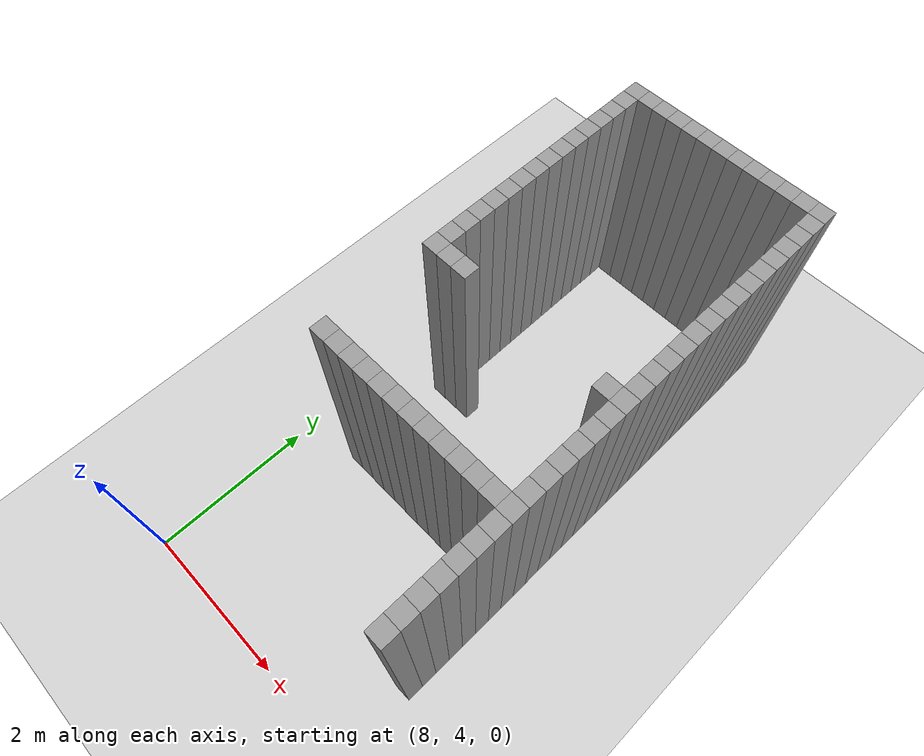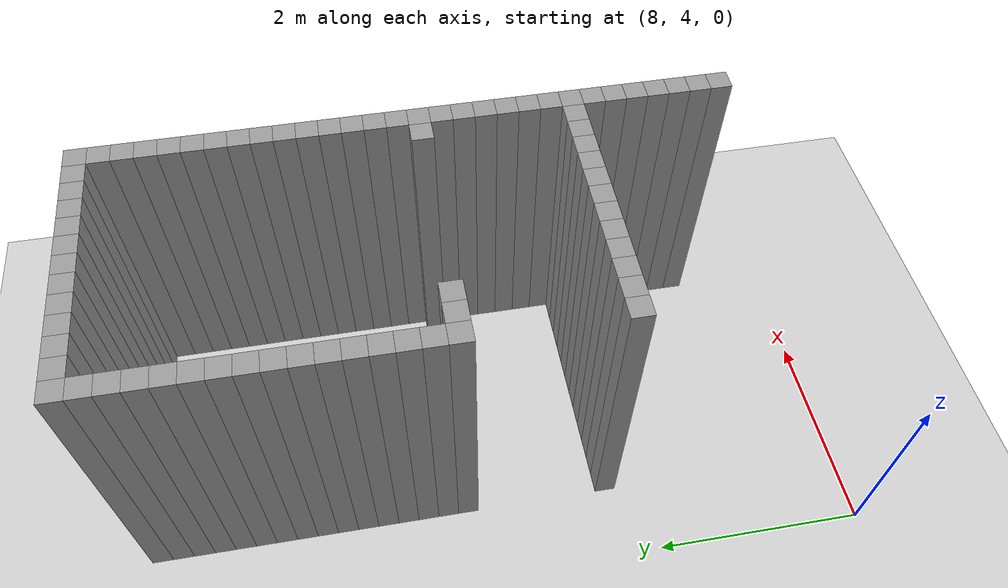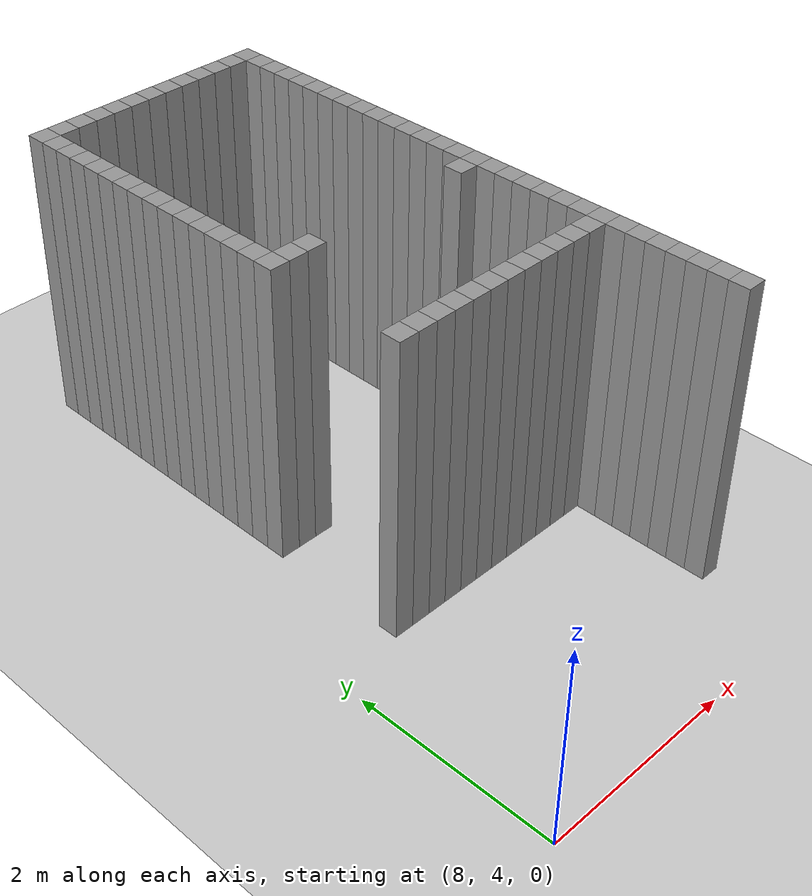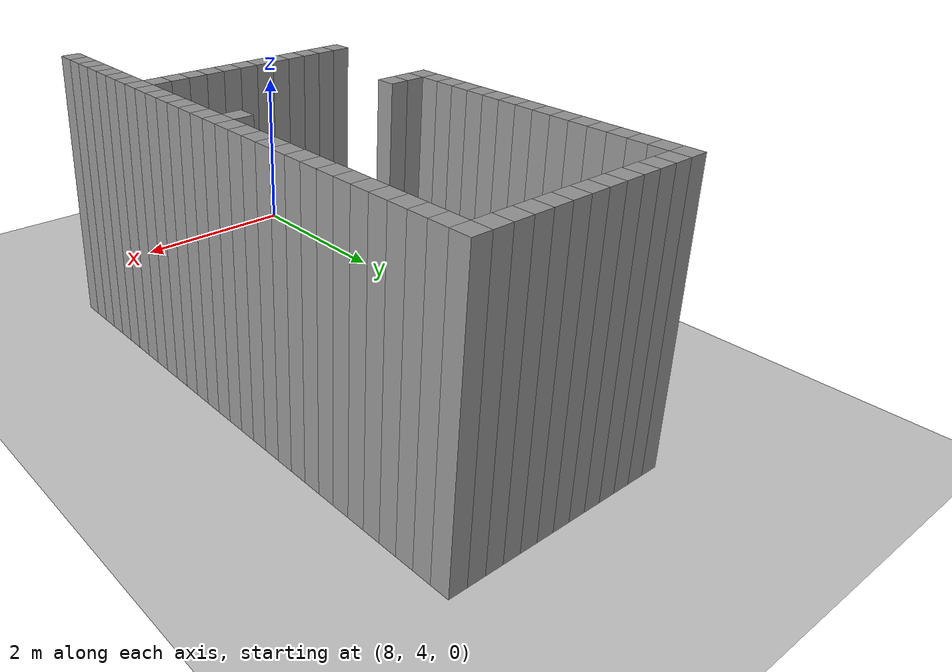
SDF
<sdf version="1.7">
 <world name="default">
  <model name="ground_plane">
   <static>1</static>
   <link name="link">
    <collision name="collision">
     <geometry><plane><normal>0 0 1</normal><size>100 100</size></plane></geometry>
     <surface>
      <contact><collide_bitmask>65535</collide_bitmask></contact>
      <friction><ode><mu>100</mu><mu2>50</mu2></ode></friction>
     </surface>
    </collision>
    <visual name="visual">
     <cast_shadows>0</cast_shadows>
     <geometry><plane><normal>0 0 1</normal><size>100 100</size></plane></geometry>
     <material>
      <script><uri>file://media/materials/scripts/gazebo.material</uri><name>Gazebo/Grey</name></script>
     </material>
    </visual>
   </link>
  </model>
  <model name="image1">
   <pose>-1 -1 0 0 -0 0</pose>
   <link name="Wall_373">
    <collision name="Wall_373_Collision">
     <geometry><box><size>0.2 0.2 3</size></box></geometry>
     <pose>0 0 1.5 0 -0 0</pose>
    </collision>
    <visual name="Wall_373_Visual">
     <pose>0 0 1.5 0 -0 0</pose>
     <geometry><box><size>0.2 0.2 3</size></box></geometry>
     <material>
      <script><uri>file://media/materials/scripts/gazebo.material</uri><name>Gazebo/Grey</name></script>
      <ambient>1 1 1 1</ambient>
     </material>
     <meta><layer>0</layer></meta>
    </visual>
    <pose>9.8 7.4 0 0 -0 0</pose>
   </link>
   <link name="Wall_374">
    <collision name="Wall_374_Collision">
     <geometry><box><size>0.2 0.2 3</size></box></geometry>
     <pose>0 0 1.5 0 -0 0</pose>
    </collision>
    <visual name="Wall_374_Visual">
     <pose>0 0 1.5 0 -0 0</pose>
     <geometry><box><size>0.2 0.2 3</size></box></geometry>
     <material>
      <script><uri>file://media/materials/scripts/gazebo.material</uri><name>Gazebo/Grey</name></script>
      <ambient>1 1 1 1</ambient>
     </material>
     <meta><layer>0</layer></meta>
    </visual>
    <pose>9.8 8.8 0 0 -0 0</pose>
   </link>
   <link name="Wall_375">
    <collision name="Wall_375_Collision">
     <geometry><box><size>0.2 0.2 3</size></box></geometry>
     <pose>0 0 1.5 0 -0 0</pose>
    </collision>
    <visual name="Wall_375_Visual">
     <pose>0 0 1.5 0 -0 0</pose>
     <geometry><box><size>0.2 0.2 3</size></box></geometry>
     <material>
      <script><uri>file://media/materials/scripts/gazebo.material</uri><name>Gazebo/Grey</name></script>
      <ambient>1 1 1 1</ambient>
     </material>
     <meta><layer>0</layer></meta>
    </visual>
    <pose>9.8 9.0 0 0 -0 0</pose>
   </link>
   <link name="Wall_376">
    <collision name="Wall_376_Collision">
     <geometry><box><size>0.2 0.2 3</size></box></geometry>
     <pose>0 0 1.5 0 -0 0</pose>
    </collision>
    <visual name="Wall_376_Visual">
     <pose>0 0 1.5 0 -0 0</pose>
     <geometry><box><size>0.2 0.2 3</size></box></geometry>
     <material>
      <script><uri>file://media/materials/scripts/gazebo.material</uri><name>Gazebo/Grey</name></script>
      <ambient>1 1 1 1</ambient>
     </material>
     <meta><layer>0</layer></meta>
    </visual>
    <pose>9.8 9.200000000000001 0 0 -0 0</pose>
   </link>
   <link name="Wall_377">
    <collision name="Wall_377_Collision">
     <geometry><box><size>0.2 0.2 3</size></box></geometry>
     <pose>0 0 1.5 0 -0 0</pose>
    </collision>
    <visual name="Wall_377_Visual">
     <pose>0 0 1.5 0 -0 0</pose>
     <geometry><box><size>0.2 0.2 3</size></box></geometry>
     <material>
      <script><uri>file://media/materials/scripts/gazebo.material</uri><name>Gazebo/Grey</name></script>
      <ambient>1 1 1 1</ambient>
     </material>
     <meta><layer>0</layer></meta>
    </visual>
    <pose>9.8 9.4 0 0 -0 0</pose>
   </link>
   <link name="Wall_378">
    <collision name="Wall_378_Collision">
     <geometry><box><size>0.2 0.2 3</size></box></geometry>
     <pose>0 0 1.5 0 -0 0</pose>
    </collision>
    <visual name="Wall_378_Visual">
     <pose>0 0 1.5 0 -0 0</pose>
     <geometry><box><size>0.2 0.2 3</size></box></geometry>
     <material>
      <script><uri>file://media/materials/scripts/gazebo.material</uri><name>Gazebo/Grey</name></script>
      <ambient>1 1 1 1</ambient>
     </material>
     <meta><layer>0</layer></meta>
    </visual>
    <pose>9.8 9.600000000000001 0 0 -0 0</pose>
   </link>
   <link name="Wall_379">
    <collision name="Wall_379_Collision">
     <geometry><box><size>0.2 0.2 3</size></box></geometry>
     <pose>0 0 1.5 0 -0 0</pose>
    </collision>
    <visual name="Wall_379_Visual">
     <pose>0 0 1.5 0 -0 0</pose>
     <geometry><box><size>0.2 0.2 3</size></box></geometry>
     <material>
      <script><uri>file://media/materials/scripts/gazebo.material</uri><name>Gazebo/Grey</name></script>
      <ambient>1 1 1 1</ambient>
     </material>
     <meta><layer>0</layer></meta>
    </visual>
    <pose>9.8 9.8 0 0 -0 0</pose>
   </link>
   <link name="Wall_380">
    <collision name="Wall_380_Collision">
     <geometry><box><size>0.2 0.2 3</size></box></geometry>
     <pose>0 0 1.5 0 -0 0</pose>
    </collision>
    <visual name="Wall_380_Visual">
     <pose>0 0 1.5 0 -0 0</pose>
     <geometry><box><size>0.2 0.2 3</size></box></geometry>
     <material>
      <script><uri>file://media/materials/scripts/gazebo.material</uri><name>Gazebo/Grey</name></script>
      <ambient>1 1 1 1</ambient>
     </material>
     <meta><layer>0</layer></meta>
    </visual>
    <pose>9.8 10.0 0 0 -0 0</pose>
   </link>
   <link name="Wall_381">
    <collision name="Wall_381_Collision">
     <geometry><box><size>0.2 0.2 3</size></box></geometry>
     <pose>0 0 1.5 0 -0 0</pose>
    </collision>
    <visual name="Wall_381_Visual">
     <pose>0 0 1.5 0 -0 0</pose>
     <geometry><box><size>0.2 0.2 3</size></box></geometry>
     <material>
      <script><uri>file://media/materials/scripts/gazebo.material</uri><name>Gazebo/Grey</name></script>
      <ambient>1 1 1 1</ambient>
     </material>
     <meta><layer>0</layer></meta>
    </visual>
    <pose>9.8 10.200000000000001 0 0 -0 0</pose>
   </link>
   <link name="Wall_382">
    <collision name="Wall_382_Collision">
     <geometry><box><size>0.2 0.2 3</size></box></geometry>
     <pose>0 0 1.5 0 -0 0</pose>
    </collision>
    <visual name="Wall_382_Visual">
     <pose>0 0 1.5 0 -0 0</pose>
     <geometry><box><size>0.2 0.2 3</size></box></geometry>
     <material>
      <script><uri>file://media/materials/scripts/gazebo.material</uri><name>Gazebo/Grey</name></script>
      <ambient>1 1 1 1</ambient>
     </material>
     <meta><layer>0</layer></meta>
    </visual>
    <pose>9.8 10.4 0 0 -0 0</pose>
   </link>
   <link name="Wall_383">
    <collision name="Wall_383_Collision">
     <geometry><box><size>0.2 0.2 3</size></box></geometry>
     <pose>0 0 1.5 0 -0 0</pose>
    </collision>
    <visual name="Wall_383_Visual">
     <pose>0 0 1.5 0 -0 0</pose>
     <geometry><box><size>0.2 0.2 3</size></box></geometry>
     <material>
      <script><uri>file://media/materials/scripts/gazebo.material</uri><name>Gazebo/Grey</name></script>
      <ambient>1 1 1 1</ambient>
     </material>
     <meta><layer>0</layer></meta>
    </visual>
    <pose>9.8 10.600000000000001 0 0 -0 0</pose>
   </link>
   <link name="Wall_384">
    <collision name="Wall_384_Collision">
     <geometry><box><size>0.2 0.2 3</size></box></geometry>
     <pose>0 0 1.5 0 -0 0</pose>
    </collision>
    <visual name="Wall_384_Visual">
     <pose>0 0 1.5 0 -0 0</pose>
     <geometry><box><size>0.2 0.2 3</size></box></geometry>
     <material>
      <script><uri>file://media/materials/scripts/gazebo.material</uri><name>Gazebo/Grey</name></script>
      <ambient>1 1 1 1</ambient>
     </material>
     <meta><layer>0</layer></meta>
    </visual>
    <pose>9.8 10.8 0 0 -0 0</pose>
   </link>
   <link name="Wall_385">
    <collision name="Wall_385_Collision">
     <geometry><box><size>0.2 0.2 3</size></box></geometry>
     <pose>0 0 1.5 0 -0 0</pose>
    </collision>
    <visual name="Wall_385_Visual">
     <pose>0 0 1.5 0 -0 0</pose>
     <geometry><box><size>0.2 0.2 3</size></box></geometry>
     <material>
      <script><uri>file://media/materials/scripts/gazebo.material</uri><name>Gazebo/Grey</name></script>
      <ambient>1 1 1 1</ambient>
     </material>
     <meta><layer>0</layer></meta>
    </visual>
    <pose>9.8 11.0 0 0 -0 0</pose>
   </link>
   <link name="Wall_386">
    <collision name="Wall_386_Collision">
     <geometry><box><size>0.2 0.2 3</size></box></geometry>
     <pose>0 0 1.5 0 -0 0</pose>
    </collision>
    <visual name="Wall_386_Visual">
     <pose>0 0 1.5 0 -0 0</pose>
     <geometry><box><size>0.2 0.2 3</size></box></geometry>
     <material>
      <script><uri>file://media/materials/scripts/gazebo.material</uri><name>Gazebo/Grey</name></script>
      <ambient>1 1 1 1</ambient>
     </material>
     <meta><layer>0</layer></meta>
    </visual>
    <pose>9.8 11.200000000000001 0 0 -0 0</pose>
   </link>
   <link name="Wall_387">
    <collision name="Wall_387_Collision">
     <geometry><box><size>0.2 0.2 3</size></box></geometry>
     <pose>0 0 1.5 0 -0 0</pose>
    </collision>
    <visual name="Wall_387_Visual">
     <pose>0 0 1.5 0 -0 0</pose>
     <geometry><box><size>0.2 0.2 3</size></box></geometry>
     <material>
      <script><uri>file://media/materials/scripts/gazebo.material</uri><name>Gazebo/Grey</name></script>
      <ambient>1 1 1 1</ambient>
     </material>
     <meta><layer>0</layer></meta>
    </visual>
    <pose>9.8 11.4 0 0 -0 0</pose>
   </link>
   <link name="Wall_388">
    <collision name="Wall_388_Collision">
     <geometry><box><size>0.2 0.2 3</size></box></geometry>
     <pose>0 0 1.5 0 -0 0</pose>
    </collision>
    <visual name="Wall_388_Visual">
     <pose>0 0 1.5 0 -0 0</pose>
     <geometry><box><size>0.2 0.2 3</size></box></geometry>
     <material>
      <script><uri>file://media/materials/scripts/gazebo.material</uri><name>Gazebo/Grey</name></script>
      <ambient>1 1 1 1</ambient>
     </material>
     <meta><layer>0</layer></meta>
    </visual>
    <pose>9.8 11.600000000000001 0 0 -0 0</pose>
   </link>
   <link name="Wall_389">
    <collision name="Wall_389_Collision">
     <geometry><box><size>0.2 0.2 3</size></box></geometry>
     <pose>0 0 1.5 0 -0 0</pose>
    </collision>
    <visual name="Wall_389_Visual">
     <pose>0 0 1.5 0 -0 0</pose>
     <geometry><box><size>0.2 0.2 3</size></box></geometry>
     <material>
      <script><uri>file://media/materials/scripts/gazebo.material</uri><name>Gazebo/Grey</name></script>
      <ambient>1 1 1 1</ambient>
     </material>
     <meta><layer>0</layer></meta>
    </visual>
    <pose>9.8 11.8 0 0 -0 0</pose>
   </link>
   <link name="Wall_393">
    <collision name="Wall_393_Collision">
     <geometry><box><size>0.2 0.2 3</size></box></geometry>
     <pose>0 0 1.5 0 -0 0</pose>
    </collision>
    <visual name="Wall_393_Visual">
     <pose>0 0 1.5 0 -0 0</pose>
     <geometry><box><size>0.2 0.2 3</size></box></geometry>
     <material>
      <script><uri>file://media/materials/scripts/gazebo.material</uri><name>Gazebo/Grey</name></script>
      <ambient>1 1 1 1</ambient>
     </material>
     <meta><layer>0</layer></meta>
    </visual>
    <pose>10.0 7.4 0 0 -0 0</pose>
   </link>
   <link name="Wall_394">
    <collision name="Wall_394_Collision">
     <geometry><box><size>0.2 0.2 3</size></box></geometry>
     <pose>0 0 1.5 0 -0 0</pose>
    </collision>
    <visual name="Wall_394_Visual">
     <pose>0 0 1.5 0 -0 0</pose>
     <geometry><box><size>0.2 0.2 3</size></box></geometry>
     <material>
      <script><uri>file://media/materials/scripts/gazebo.material</uri><name>Gazebo/Grey</name></script>
      <ambient>1 1 1 1</ambient>
     </material>
     <meta><layer>0</layer></meta>
    </visual>
    <pose>10.0 8.8 0 0 -0 0</pose>
   </link>
   <link name="Wall_395">
    <collision name="Wall_395_Collision">
     <geometry><box><size>0.2 0.2 3</size></box></geometry>
     <pose>0 0 1.5 0 -0 0</pose>
    </collision>
    <visual name="Wall_395_Visual">
     <pose>0 0 1.5 0 -0 0</pose>
     <geometry><box><size>0.2 0.2 3</size></box></geometry>
     <material>
      <script><uri>file://media/materials/scripts/gazebo.material</uri><name>Gazebo/Grey</name></script>
      <ambient>1 1 1 1</ambient>
     </material>
     <meta><layer>0</layer></meta>
    </visual>
    <pose>10.0 11.8 0 0 -0 0</pose>
   </link>
   <link name="Wall_399">
    <collision name="Wall_399_Collision">
     <geometry><box><size>0.2 0.2 3</size></box></geometry>
     <pose>0 0 1.5 0 -0 0</pose>
    </collision>
    <visual name="Wall_399_Visual">
     <pose>0 0 1.5 0 -0 0</pose>
     <geometry><box><size>0.2 0.2 3</size></box></geometry>
     <material>
      <script><uri>file://media/materials/scripts/gazebo.material</uri><name>Gazebo/Grey</name></script>
      <ambient>1 1 1 1</ambient>
     </material>
     <meta><layer>0</layer></meta>
    </visual>
    <pose>10.200000000000001 7.4 0 0 -0 0</pose>
   </link>
   <link name="Wall_400">
    <collision name="Wall_400_Collision">
     <geometry><box><size>0.2 0.2 3</size></box></geometry>
     <pose>0 0 1.5 0 -0 0</pose>
    </collision>
    <visual name="Wall_400_Visual">
     <pose>0 0 1.5 0 -0 0</pose>
     <geometry><box><size>0.2 0.2 3</size></box></geometry>
     <material>
      <script><uri>file://media/materials/scripts/gazebo.material</uri><name>Gazebo/Grey</name></script>
      <ambient>1 1 1 1</ambient>
     </material>
     <meta><layer>0</layer></meta>
    </visual>
    <pose>10.200000000000001 8.8 0 0 -0 0</pose>
   </link>
   <link name="Wall_401">
    <collision name="Wall_401_Collision">
     <geometry><box><size>0.2 0.2 3</size></box></geometry>
     <pose>0 0 1.5 0 -0 0</pose>
    </collision>
    <visual name="Wall_401_Visual">
     <pose>0 0 1.5 0 -0 0</pose>
     <geometry><box><size>0.2 0.2 3</size></box></geometry>
     <material>
      <script><uri>file://media/materials/scripts/gazebo.material</uri><name>Gazebo/Grey</name></script>
      <ambient>1 1 1 1</ambient>
     </material>
     <meta><layer>0</layer></meta>
    </visual>
    <pose>10.200000000000001 11.8 0 0 -0 0</pose>
   </link>
   <link name="Wall_405">
    <collision name="Wall_405_Collision">
     <geometry><box><size>0.2 0.2 3</size></box></geometry>
     <pose>0 0 1.5 0 -0 0</pose>
    </collision>
    <visual name="Wall_405_Visual">
     <pose>0 0 1.5 0 -0 0</pose>
     <geometry><box><size>0.2 0.2 3</size></box></geometry>
     <material>
      <script><uri>file://media/materials/scripts/gazebo.material</uri><name>Gazebo/Grey</name></script>
      <ambient>1 1 1 1</ambient>
     </material>
     <meta><layer>0</layer></meta>
    </visual>
    <pose>10.4 7.4 0 0 -0 0</pose>
   </link>
   <link name="Wall_406">
    <collision name="Wall_406_Collision">
     <geometry><box><size>0.2 0.2 3</size></box></geometry>
     <pose>0 0 1.5 0 -0 0</pose>
    </collision>
    <visual name="Wall_406_Visual">
     <pose>0 0 1.5 0 -0 0</pose>
     <geometry><box><size>0.2 0.2 3</size></box></geometry>
     <material>
      <script><uri>file://media/materials/scripts/gazebo.material</uri><name>Gazebo/Grey</name></script>
      <ambient>1 1 1 1</ambient>
     </material>
     <meta><layer>0</layer></meta>
    </visual>
    <pose>10.4 11.8 0 0 -0 0</pose>
   </link>
   <link name="Wall_410">
    <collision name="Wall_410_Collision">
     <geometry><box><size>0.2 0.2 3</size></box></geometry>
     <pose>0 0 1.5 0 -0 0</pose>
    </collision>
    <visual name="Wall_410_Visual">
     <pose>0 0 1.5 0 -0 0</pose>
     <geometry><box><size>0.2 0.2 3</size></box></geometry>
     <material>
      <script><uri>file://media/materials/scripts/gazebo.material</uri><name>Gazebo/Grey</name></script>
      <ambient>1 1 1 1</ambient>
     </material>
     <meta><layer>0</layer></meta>
    </visual>
    <pose>10.600000000000001 7.4 0 0 -0 0</pose>
   </link>
   <link name="Wall_411">
    <collision name="Wall_411_Collision">
     <geometry><box><size>0.2 0.2 3</size></box></geometry>
     <pose>0 0 1.5 0 -0 0</pose>
    </collision>
    <visual name="Wall_411_Visual">
     <pose>0 0 1.5 0 -0 0</pose>
     <geometry><box><size>0.2 0.2 3</size></box></geometry>
     <material>
      <script><uri>file://media/materials/scripts/gazebo.material</uri><name>Gazebo/Grey</name></script>
      <ambient>1 1 1 1</ambient>
     </material>
     <meta><layer>0</layer></meta>
    </visual>
    <pose>10.600000000000001 11.8 0 0 -0 0</pose>
   </link>
   <link name="Wall_415">
    <collision name="Wall_415_Collision">
     <geometry><box><size>0.2 0.2 3</size></box></geometry>
     <pose>0 0 1.5 0 -0 0</pose>
    </collision>
    <visual name="Wall_415_Visual">
     <pose>0 0 1.5 0 -0 0</pose>
     <geometry><box><size>0.2 0.2 3</size></box></geometry>
     <material>
      <script><uri>file://media/materials/scripts/gazebo.material</uri><name>Gazebo/Grey</name></script>
      <ambient>1 1 1 1</ambient>
     </material>
     <meta><layer>0</layer></meta>
    </visual>
    <pose>10.8 7.4 0 0 -0 0</pose>
   </link>
   <link name="Wall_416">
    <collision name="Wall_416_Collision">
     <geometry><box><size>0.2 0.2 3</size></box></geometry>
     <pose>0 0 1.5 0 -0 0</pose>
    </collision>
    <visual name="Wall_416_Visual">
     <pose>0 0 1.5 0 -0 0</pose>
     <geometry><box><size>0.2 0.2 3</size></box></geometry>
     <material>
      <script><uri>file://media/materials/scripts/gazebo.material</uri><name>Gazebo/Grey</name></script>
      <ambient>1 1 1 1</ambient>
     </material>
     <meta><layer>0</layer></meta>
    </visual>
    <pose>10.8 11.8 0 0 -0 0</pose>
   </link>
   <link name="Wall_420">
    <collision name="Wall_420_Collision">
     <geometry><box><size>0.2 0.2 3</size></box></geometry>
     <pose>0 0 1.5 0 -0 0</pose>
    </collision>
    <visual name="Wall_420_Visual">
     <pose>0 0 1.5 0 -0 0</pose>
     <geometry><box><size>0.2 0.2 3</size></box></geometry>
     <material>
      <script><uri>file://media/materials/scripts/gazebo.material</uri><name>Gazebo/Grey</name></script>
      <ambient>1 1 1 1</ambient>
     </material>
     <meta><layer>0</layer></meta>
    </visual>
    <pose>11.0 7.4 0 0 -0 0</pose>
   </link>
   <link name="Wall_421">
    <collision name="Wall_421_Collision">
     <geometry><box><size>0.2 0.2 3</size></box></geometry>
     <pose>0 0 1.5 0 -0 0</pose>
    </collision>
    <visual name="Wall_421_Visual">
     <pose>0 0 1.5 0 -0 0</pose>
     <geometry><box><size>0.2 0.2 3</size></box></geometry>
     <material>
      <script><uri>file://media/materials/scripts/gazebo.material</uri><name>Gazebo/Grey</name></script>
      <ambient>1 1 1 1</ambient>
     </material>
     <meta><layer>0</layer></meta>
    </visual>
    <pose>11.0 11.8 0 0 -0 0</pose>
   </link>
   <link name="Wall_425">
    <collision name="Wall_425_Collision">
     <geometry><box><size>0.2 0.2 3</size></box></geometry>
     <pose>0 0 1.5 0 -0 0</pose>
    </collision>
    <visual name="Wall_425_Visual">
     <pose>0 0 1.5 0 -0 0</pose>
     <geometry><box><size>0.2 0.2 3</size></box></geometry>
     <material>
      <script><uri>file://media/materials/scripts/gazebo.material</uri><name>Gazebo/Grey</name></script>
      <ambient>1 1 1 1</ambient>
     </material>
     <meta><layer>0</layer></meta>
    </visual>
    <pose>11.200000000000001 7.4 0 0 -0 0</pose>
   </link>
   <link name="Wall_426">
    <collision name="Wall_426_Collision">
     <geometry><box><size>0.2 0.2 3</size></box></geometry>
     <pose>0 0 1.5 0 -0 0</pose>
    </collision>
    <visual name="Wall_426_Visual">
     <pose>0 0 1.5 0 -0 0</pose>
     <geometry><box><size>0.2 0.2 3</size></box></geometry>
     <material>
      <script><uri>file://media/materials/scripts/gazebo.material</uri><name>Gazebo/Grey</name></script>
      <ambient>1 1 1 1</ambient>
     </material>
     <meta><layer>0</layer></meta>
    </visual>
    <pose>11.200000000000001 11.8 0 0 -0 0</pose>
   </link>
   <link name="Wall_430">
    <collision name="Wall_430_Collision">
     <geometry><box><size>0.2 0.2 3</size></box></geometry>
     <pose>0 0 1.5 0 -0 0</pose>
    </collision>
    <visual name="Wall_430_Visual">
     <pose>0 0 1.5 0 -0 0</pose>
     <geometry><box><size>0.2 0.2 3</size></box></geometry>
     <material>
      <script><uri>file://media/materials/scripts/gazebo.material</uri><name>Gazebo/Grey</name></script>
      <ambient>1 1 1 1</ambient>
     </material>
     <meta><layer>0</layer></meta>
    </visual>
    <pose>11.4 7.4 0 0 -0 0</pose>
   </link>
   <link name="Wall_431">
    <collision name="Wall_431_Collision">
     <geometry><box><size>0.2 0.2 3</size></box></geometry>
     <pose>0 0 1.5 0 -0 0</pose>
    </collision>
    <visual name="Wall_431_Visual">
     <pose>0 0 1.5 0 -0 0</pose>
     <geometry><box><size>0.2 0.2 3</size></box></geometry>
     <material>
      <script><uri>file://media/materials/scripts/gazebo.material</uri><name>Gazebo/Grey</name></script>
      <ambient>1 1 1 1</ambient>
     </material>
     <meta><layer>0</layer></meta>
    </visual>
    <pose>11.4 11.8 0 0 -0 0</pose>
   </link>
   <link name="Wall_435">
    <collision name="Wall_435_Collision">
     <geometry><box><size>0.2 0.2 3</size></box></geometry>
     <pose>0 0 1.5 0 -0 0</pose>
    </collision>
    <visual name="Wall_435_Visual">
     <pose>0 0 1.5 0 -0 0</pose>
     <geometry><box><size>0.2 0.2 3</size></box></geometry>
     <material>
      <script><uri>file://media/materials/scripts/gazebo.material</uri><name>Gazebo/Grey</name></script>
      <ambient>1 1 1 1</ambient>
     </material>
     <meta><layer>0</layer></meta>
    </visual>
    <pose>11.600000000000001 7.4 0 0 -0 0</pose>
   </link>
   <link name="Wall_436">
    <collision name="Wall_436_Collision">
     <geometry><box><size>0.2 0.2 3</size></box></geometry>
     <pose>0 0 1.5 0 -0 0</pose>
    </collision>
    <visual name="Wall_436_Visual">
     <pose>0 0 1.5 0 -0 0</pose>
     <geometry><box><size>0.2 0.2 3</size></box></geometry>
     <material>
      <script><uri>file://media/materials/scripts/gazebo.material</uri><name>Gazebo/Grey</name></script>
      <ambient>1 1 1 1</ambient>
     </material>
     <meta><layer>0</layer></meta>
    </visual>
    <pose>11.600000000000001 11.8 0 0 -0 0</pose>
   </link>
   <link name="Wall_440">
    <collision name="Wall_440_Collision">
     <geometry><box><size>0.2 0.2 3</size></box></geometry>
     <pose>0 0 1.5 0 -0 0</pose>
    </collision>
    <visual name="Wall_440_Visual">
     <pose>0 0 1.5 0 -0 0</pose>
     <geometry><box><size>0.2 0.2 3</size></box></geometry>
     <material>
      <script><uri>file://media/materials/scripts/gazebo.material</uri><name>Gazebo/Grey</name></script>
      <ambient>1 1 1 1</ambient>
     </material>
     <meta><layer>0</layer></meta>
    </visual>
    <pose>11.8 7.4 0 0 -0 0</pose>
   </link>
   <link name="Wall_441">
    <collision name="Wall_441_Collision">
     <geometry><box><size>0.2 0.2 3</size></box></geometry>
     <pose>0 0 1.5 0 -0 0</pose>
    </collision>
    <visual name="Wall_441_Visual">
     <pose>0 0 1.5 0 -0 0</pose>
     <geometry><box><size>0.2 0.2 3</size></box></geometry>
     <material>
      <script><uri>file://media/materials/scripts/gazebo.material</uri><name>Gazebo/Grey</name></script>
      <ambient>1 1 1 1</ambient>
     </material>
     <meta><layer>0</layer></meta>
    </visual>
    <pose>11.8 11.8 0 0 -0 0</pose>
   </link>
   <link name="Wall_445">
    <collision name="Wall_445_Collision">
     <geometry><box><size>0.2 0.2 3</size></box></geometry>
     <pose>0 0 1.5 0 -0 0</pose>
    </collision>
    <visual name="Wall_445_Visual">
     <pose>0 0 1.5 0 -0 0</pose>
     <geometry><box><size>0.2 0.2 3</size></box></geometry>
     <material>
      <script><uri>file://media/materials/scripts/gazebo.material</uri><name>Gazebo/Grey</name></script>
      <ambient>1 1 1 1</ambient>
     </material>
     <meta><layer>0</layer></meta>
    </visual>
    <pose>12.0 7.4 0 0 -0 0</pose>
   </link>
   <link name="Wall_446">
    <collision name="Wall_446_Collision">
     <geometry><box><size>0.2 0.2 3</size></box></geometry>
     <pose>0 0 1.5 0 -0 0</pose>
    </collision>
    <visual name="Wall_446_Visual">
     <pose>0 0 1.5 0 -0 0</pose>
     <geometry><box><size>0.2 0.2 3</size></box></geometry>
     <material>
      <script><uri>file://media/materials/scripts/gazebo.material</uri><name>Gazebo/Grey</name></script>
      <ambient>1 1 1 1</ambient>
     </material>
     <meta><layer>0</layer></meta>
    </visual>
    <pose>12.0 8.8 0 0 -0 0</pose>
   </link>
   <link name="Wall_447">
    <collision name="Wall_447_Collision">
     <geometry><box><size>0.2 0.2 3</size></box></geometry>
     <pose>0 0 1.5 0 -0 0</pose>
    </collision>
    <visual name="Wall_447_Visual">
     <pose>0 0 1.5 0 -0 0</pose>
     <geometry><box><size>0.2 0.2 3</size></box></geometry>
     <material>
      <script><uri>file://media/materials/scripts/gazebo.material</uri><name>Gazebo/Grey</name></script>
      <ambient>1 1 1 1</ambient>
     </material>
     <meta><layer>0</layer></meta>
    </visual>
    <pose>12.0 11.8 0 0 -0 0</pose>
   </link>
   <link name="Wall_478">
    <collision name="Wall_478_Collision">
     <geometry><box><size>0.2 0.2 3</size></box></geometry>
     <pose>0 0 1.5 0 -0 0</pose>
    </collision>
    <visual name="Wall_478_Visual">
     <pose>0 0 1.5 0 -0 0</pose>
     <geometry><box><size>0.2 0.2 3</size></box></geometry>
     <material>
      <script><uri>file://media/materials/scripts/gazebo.material</uri><name>Gazebo/Grey</name></script>
      <ambient>1 1 1 1</ambient>
     </material>
     <meta><layer>0</layer></meta>
    </visual>
    <pose>12.200000000000001 6.0 0 0 -0 0</pose>
   </link>
   <link name="Wall_479">
    <collision name="Wall_479_Collision">
     <geometry><box><size>0.2 0.2 3</size></box></geometry>
     <pose>0 0 1.5 0 -0 0</pose>
    </collision>
    <visual name="Wall_479_Visual">
     <pose>0 0 1.5 0 -0 0</pose>
     <geometry><box><size>0.2 0.2 3</size></box></geometry>
     <material>
      <script><uri>file://media/materials/scripts/gazebo.material</uri><name>Gazebo/Grey</name></script>
      <ambient>1 1 1 1</ambient>
     </material>
     <meta><layer>0</layer></meta>
    </visual>
    <pose>12.200000000000001 6.2 0 0 -0 0</pose>
   </link>
   <link name="Wall_480">
    <collision name="Wall_480_Collision">
     <geometry><box><size>0.2 0.2 3</size></box></geometry>
     <pose>0 0 1.5 0 -0 0</pose>
    </collision>
    <visual name="Wall_480_Visual">
     <pose>0 0 1.5 0 -0 0</pose>
     <geometry><box><size>0.2 0.2 3</size></box></geometry>
     <material>
      <script><uri>file://media/materials/scripts/gazebo.material</uri><name>Gazebo/Grey</name></script>
      <ambient>1 1 1 1</ambient>
     </material>
     <meta><layer>0</layer></meta>
    </visual>
    <pose>12.200000000000001 6.4 0 0 -0 0</pose>
   </link>
   <link name="Wall_481">
    <collision name="Wall_481_Collision">
     <geometry><box><size>0.2 0.2 3</size></box></geometry>
     <pose>0 0 1.5 0 -0 0</pose>
    </collision>
    <visual name="Wall_481_Visual">
     <pose>0 0 1.5 0 -0 0</pose>
     <geometry><box><size>0.2 0.2 3</size></box></geometry>
     <material>
      <script><uri>file://media/materials/scripts/gazebo.material</uri><name>Gazebo/Grey</name></script>
      <ambient>1 1 1 1</ambient>
     </material>
     <meta><layer>0</layer></meta>
    </visual>
    <pose>12.200000000000001 6.6000000000000005 0 0 -0 0</pose>
   </link>
   <link name="Wall_482">
    <collision name="Wall_482_Collision">
     <geometry><box><size>0.2 0.2 3</size></box></geometry>
     <pose>0 0 1.5 0 -0 0</pose>
    </collision>
    <visual name="Wall_482_Visual">
     <pose>0 0 1.5 0 -0 0</pose>
     <geometry><box><size>0.2 0.2 3</size></box></geometry>
     <material>
      <script><uri>file://media/materials/scripts/gazebo.material</uri><name>Gazebo/Grey</name></script>
      <ambient>1 1 1 1</ambient>
     </material>
     <meta><layer>0</layer></meta>
    </visual>
    <pose>12.200000000000001 6.800000000000001 0 0 -0 0</pose>
   </link>
   <link name="Wall_483">
    <collision name="Wall_483_Collision">
     <geometry><box><size>0.2 0.2 3</size></box></geometry>
     <pose>0 0 1.5 0 -0 0</pose>
    </collision>
    <visual name="Wall_483_Visual">
     <pose>0 0 1.5 0 -0 0</pose>
     <geometry><box><size>0.2 0.2 3</size></box></geometry>
     <material>
      <script><uri>file://media/materials/scripts/gazebo.material</uri><name>Gazebo/Grey</name></script>
      <ambient>1 1 1 1</ambient>
     </material>
     <meta><layer>0</layer></meta>
    </visual>
    <pose>12.200000000000001 7.0 0 0 -0 0</pose>
   </link>
   <link name="Wall_484">
    <collision name="Wall_484_Collision">
     <geometry><box><size>0.2 0.2 3</size></box></geometry>
     <pose>0 0 1.5 0 -0 0</pose>
    </collision>
    <visual name="Wall_484_Visual">
     <pose>0 0 1.5 0 -0 0</pose>
     <geometry><box><size>0.2 0.2 3</size></box></geometry>
     <material>
      <script><uri>file://media/materials/scripts/gazebo.material</uri><name>Gazebo/Grey</name></script>
      <ambient>1 1 1 1</ambient>
     </material>
     <meta><layer>0</layer></meta>
    </visual>
    <pose>12.200000000000001 7.2 0 0 -0 0</pose>
   </link>
   <link name="Wall_485">
    <collision name="Wall_485_Collision">
     <geometry><box><size>0.2 0.2 3</size></box></geometry>
     <pose>0 0 1.5 0 -0 0</pose>
    </collision>
    <visual name="Wall_485_Visual">
     <pose>0 0 1.5 0 -0 0</pose>
     <geometry><box><size>0.2 0.2 3</size></box></geometry>
     <material>
      <script><uri>file://media/materials/scripts/gazebo.material</uri><name>Gazebo/Grey</name></script>
      <ambient>1 1 1 1</ambient>
     </material>
     <meta><layer>0</layer></meta>
    </visual>
    <pose>12.200000000000001 7.4 0 0 -0 0</pose>
   </link>
   <link name="Wall_486">
    <collision name="Wall_486_Collision">
     <geometry><box><size>0.2 0.2 3</size></box></geometry>
     <pose>0 0 1.5 0 -0 0</pose>
    </collision>
    <visual name="Wall_486_Visual">
     <pose>0 0 1.5 0 -0 0</pose>
     <geometry><box><size>0.2 0.2 3</size></box></geometry>
     <material>
      <script><uri>file://media/materials/scripts/gazebo.material</uri><name>Gazebo/Grey</name></script>
      <ambient>1 1 1 1</ambient>
     </material>
     <meta><layer>0</layer></meta>
    </visual>
    <pose>12.200000000000001 7.6000000000000005 0 0 -0 0</pose>
   </link>
   <link name="Wall_487">
    <collision name="Wall_487_Collision">
     <geometry><box><size>0.2 0.2 3</size></box></geometry>
     <pose>0 0 1.5 0 -0 0</pose>
    </collision>
    <visual name="Wall_487_Visual">
     <pose>0 0 1.5 0 -0 0</pose>
     <geometry><box><size>0.2 0.2 3</size></box></geometry>
     <material>
      <script><uri>file://media/materials/scripts/gazebo.material</uri><name>Gazebo/Grey</name></script>
      <ambient>1 1 1 1</ambient>
     </material>
     <meta><layer>0</layer></meta>
    </visual>
    <pose>12.200000000000001 7.800000000000001 0 0 -0 0</pose>
   </link>
   <link name="Wall_488">
    <collision name="Wall_488_Collision">
     <geometry><box><size>0.2 0.2 3</size></box></geometry>
     <pose>0 0 1.5 0 -0 0</pose>
    </collision>
    <visual name="Wall_488_Visual">
     <pose>0 0 1.5 0 -0 0</pose>
     <geometry><box><size>0.2 0.2 3</size></box></geometry>
     <material>
      <script><uri>file://media/materials/scripts/gazebo.material</uri><name>Gazebo/Grey</name></script>
      <ambient>1 1 1 1</ambient>
     </material>
     <meta><layer>0</layer></meta>
    </visual>
    <pose>12.200000000000001 8.0 0 0 -0 0</pose>
   </link>
   <link name="Wall_489">
    <collision name="Wall_489_Collision">
     <geometry><box><size>0.2 0.2 3</size></box></geometry>
     <pose>0 0 1.5 0 -0 0</pose>
    </collision>
    <visual name="Wall_489_Visual">
     <pose>0 0 1.5 0 -0 0</pose>
     <geometry><box><size>0.2 0.2 3</size></box></geometry>
     <material>
      <script><uri>file://media/materials/scripts/gazebo.material</uri><name>Gazebo/Grey</name></script>
      <ambient>1 1 1 1</ambient>
     </material>
     <meta><layer>0</layer></meta>
    </visual>
    <pose>12.200000000000001 8.200000000000001 0 0 -0 0</pose>
   </link>
   <link name="Wall_490">
    <collision name="Wall_490_Collision">
     <geometry><box><size>0.2 0.2 3</size></box></geometry>
     <pose>0 0 1.5 0 -0 0</pose>
    </collision>
    <visual name="Wall_490_Visual">
     <pose>0 0 1.5 0 -0 0</pose>
     <geometry><box><size>0.2 0.2 3</size></box></geometry>
     <material>
      <script><uri>file://media/materials/scripts/gazebo.material</uri><name>Gazebo/Grey</name></script>
      <ambient>1 1 1 1</ambient>
     </material>
     <meta><layer>0</layer></meta>
    </visual>
    <pose>12.200000000000001 8.4 0 0 -0 0</pose>
   </link>
   <link name="Wall_491">
    <collision name="Wall_491_Collision">
     <geometry><box><size>0.2 0.2 3</size></box></geometry>
     <pose>0 0 1.5 0 -0 0</pose>
    </collision>
    <visual name="Wall_491_Visual">
     <pose>0 0 1.5 0 -0 0</pose>
     <geometry><box><size>0.2 0.2 3</size></box></geometry>
     <material>
      <script><uri>file://media/materials/scripts/gazebo.material</uri><name>Gazebo/Grey</name></script>
      <ambient>1 1 1 1</ambient>
     </material>
     <meta><layer>0</layer></meta>
    </visual>
    <pose>12.200000000000001 8.6 0 0 -0 0</pose>
   </link>
   <link name="Wall_492">
    <collision name="Wall_492_Collision">
     <geometry><box><size>0.2 0.2 3</size></box></geometry>
     <pose>0 0 1.5 0 -0 0</pose>
    </collision>
    <visual name="Wall_492_Visual">
     <pose>0 0 1.5 0 -0 0</pose>
     <geometry><box><size>0.2 0.2 3</size></box></geometry>
     <material>
      <script><uri>file://media/materials/scripts/gazebo.material</uri><name>Gazebo/Grey</name></script>
      <ambient>1 1 1 1</ambient>
     </material>
     <meta><layer>0</layer></meta>
    </visual>
    <pose>12.200000000000001 8.8 0 0 -0 0</pose>
   </link>
   <link name="Wall_493">
    <collision name="Wall_493_Collision">
     <geometry><box><size>0.2 0.2 3</size></box></geometry>
     <pose>0 0 1.5 0 -0 0</pose>
    </collision>
    <visual name="Wall_493_Visual">
     <pose>0 0 1.5 0 -0 0</pose>
     <geometry><box><size>0.2 0.2 3</size></box></geometry>
     <material>
      <script><uri>file://media/materials/scripts/gazebo.material</uri><name>Gazebo/Grey</name></script>
      <ambient>1 1 1 1</ambient>
     </material>
     <meta><layer>0</layer></meta>
    </visual>
    <pose>12.200000000000001 9.0 0 0 -0 0</pose>
   </link>
   <link name="Wall_494">
    <collision name="Wall_494_Collision">
     <geometry><box><size>0.2 0.2 3</size></box></geometry>
     <pose>0 0 1.5 0 -0 0</pose>
    </collision>
    <visual name="Wall_494_Visual">
     <pose>0 0 1.5 0 -0 0</pose>
     <geometry><box><size>0.2 0.2 3</size></box></geometry>
     <material>
      <script><uri>file://media/materials/scripts/gazebo.material</uri><name>Gazebo/Grey</name></script>
      <ambient>1 1 1 1</ambient>
     </material>
     <meta><layer>0</layer></meta>
    </visual>
    <pose>12.200000000000001 9.200000000000001 0 0 -0 0</pose>
   </link>
   <link name="Wall_495">
    <collision name="Wall_495_Collision">
     <geometry><box><size>0.2 0.2 3</size></box></geometry>
     <pose>0 0 1.5 0 -0 0</pose>
    </collision>
    <visual name="Wall_495_Visual">
     <pose>0 0 1.5 0 -0 0</pose>
     <geometry><box><size>0.2 0.2 3</size></box></geometry>
     <material>
      <script><uri>file://media/materials/scripts/gazebo.material</uri><name>Gazebo/Grey</name></script>
      <ambient>1 1 1 1</ambient>
     </material>
     <meta><layer>0</layer></meta>
    </visual>
    <pose>12.200000000000001 9.4 0 0 -0 0</pose>
   </link>
   <link name="Wall_496">
    <collision name="Wall_496_Collision">
     <geometry><box><size>0.2 0.2 3</size></box></geometry>
     <pose>0 0 1.5 0 -0 0</pose>
    </collision>
    <visual name="Wall_496_Visual">
     <pose>0 0 1.5 0 -0 0</pose>
     <geometry><box><size>0.2 0.2 3</size></box></geometry>
     <material>
      <script><uri>file://media/materials/scripts/gazebo.material</uri><name>Gazebo/Grey</name></script>
      <ambient>1 1 1 1</ambient>
     </material>
     <meta><layer>0</layer></meta>
    </visual>
    <pose>12.200000000000001 9.600000000000001 0 0 -0 0</pose>
   </link>
   <link name="Wall_497">
    <collision name="Wall_497_Collision">
     <geometry><box><size>0.2 0.2 3</size></box></geometry>
     <pose>0 0 1.5 0 -0 0</pose>
    </collision>
    <visual name="Wall_497_Visual">
     <pose>0 0 1.5 0 -0 0</pose>
     <geometry><box><size>0.2 0.2 3</size></box></geometry>
     <material>
      <script><uri>file://media/materials/scripts/gazebo.material</uri><name>Gazebo/Grey</name></script>
      <ambient>1 1 1 1</ambient>
     </material>
     <meta><layer>0</layer></meta>
    </visual>
    <pose>12.200000000000001 9.8 0 0 -0 0</pose>
   </link>
   <link name="Wall_498">
    <collision name="Wall_498_Collision">
     <geometry><box><size>0.2 0.2 3</size></box></geometry>
     <pose>0 0 1.5 0 -0 0</pose>
    </collision>
    <visual name="Wall_498_Visual">
     <pose>0 0 1.5 0 -0 0</pose>
     <geometry><box><size>0.2 0.2 3</size></box></geometry>
     <material>
      <script><uri>file://media/materials/scripts/gazebo.material</uri><name>Gazebo/Grey</name></script>
      <ambient>1 1 1 1</ambient>
     </material>
     <meta><layer>0</layer></meta>
    </visual>
    <pose>12.200000000000001 10.0 0 0 -0 0</pose>
   </link>
   <link name="Wall_499">
    <collision name="Wall_499_Collision">
     <geometry><box><size>0.2 0.2 3</size></box></geometry>
     <pose>0 0 1.5 0 -0 0</pose>
    </collision>
    <visual name="Wall_499_Visual">
     <pose>0 0 1.5 0 -0 0</pose>
     <geometry><box><size>0.2 0.2 3</size></box></geometry>
     <material>
      <script><uri>file://media/materials/scripts/gazebo.material</uri><name>Gazebo/Grey</name></script>
      <ambient>1 1 1 1</ambient>
     </material>
     <meta><layer>0</layer></meta>
    </visual>
    <pose>12.200000000000001 10.200000000000001 0 0 -0 0</pose>
   </link>
   <link name="Wall_500">
    <collision name="Wall_500_Collision">
     <geometry><box><size>0.2 0.2 3</size></box></geometry>
     <pose>0 0 1.5 0 -0 0</pose>
    </collision>
    <visual name="Wall_500_Visual">
     <pose>0 0 1.5 0 -0 0</pose>
     <geometry><box><size>0.2 0.2 3</size></box></geometry>
     <material>
      <script><uri>file://media/materials/scripts/gazebo.material</uri><name>Gazebo/Grey</name></script>
      <ambient>1 1 1 1</ambient>
     </material>
     <meta><layer>0</layer></meta>
    </visual>
    <pose>12.200000000000001 10.4 0 0 -0 0</pose>
   </link>
   <link name="Wall_501">
    <collision name="Wall_501_Collision">
     <geometry><box><size>0.2 0.2 3</size></box></geometry>
     <pose>0 0 1.5 0 -0 0</pose>
    </collision>
    <visual name="Wall_501_Visual">
     <pose>0 0 1.5 0 -0 0</pose>
     <geometry><box><size>0.2 0.2 3</size></box></geometry>
     <material>
      <script><uri>file://media/materials/scripts/gazebo.material</uri><name>Gazebo/Grey</name></script>
      <ambient>1 1 1 1</ambient>
     </material>
     <meta><layer>0</layer></meta>
    </visual>
    <pose>12.200000000000001 10.600000000000001 0 0 -0 0</pose>
   </link>
   <link name="Wall_502">
    <collision name="Wall_502_Collision">
     <geometry><box><size>0.2 0.2 3</size></box></geometry>
     <pose>0 0 1.5 0 -0 0</pose>
    </collision>
    <visual name="Wall_502_Visual">
     <pose>0 0 1.5 0 -0 0</pose>
     <geometry><box><size>0.2 0.2 3</size></box></geometry>
     <material>
      <script><uri>file://media/materials/scripts/gazebo.material</uri><name>Gazebo/Grey</name></script>
      <ambient>1 1 1 1</ambient>
     </material>
     <meta><layer>0</layer></meta>
    </visual>
    <pose>12.200000000000001 10.8 0 0 -0 0</pose>
   </link>
   <link name="Wall_503">
    <collision name="Wall_503_Collision">
     <geometry><box><size>0.2 0.2 3</size></box></geometry>
     <pose>0 0 1.5 0 -0 0</pose>
    </collision>
    <visual name="Wall_503_Visual">
     <pose>0 0 1.5 0 -0 0</pose>
     <geometry><box><size>0.2 0.2 3</size></box></geometry>
     <material>
      <script><uri>file://media/materials/scripts/gazebo.material</uri><name>Gazebo/Grey</name></script>
      <ambient>1 1 1 1</ambient>
     </material>
     <meta><layer>0</layer></meta>
    </visual>
    <pose>12.200000000000001 11.0 0 0 -0 0</pose>
   </link>
   <link name="Wall_504">
    <collision name="Wall_504_Collision">
     <geometry><box><size>0.2 0.2 3</size></box></geometry>
     <pose>0 0 1.5 0 -0 0</pose>
    </collision>
    <visual name="Wall_504_Visual">
     <pose>0 0 1.5 0 -0 0</pose>
     <geometry><box><size>0.2 0.2 3</size></box></geometry>
     <material>
      <script><uri>file://media/materials/scripts/gazebo.material</uri><name>Gazebo/Grey</name></script>
      <ambient>1 1 1 1</ambient>
     </material>
     <meta><layer>0</layer></meta>
    </visual>
    <pose>12.200000000000001 11.200000000000001 0 0 -0 0</pose>
   </link>
   <link name="Wall_505">
    <collision name="Wall_505_Collision">
     <geometry><box><size>0.2 0.2 3</size></box></geometry>
     <pose>0 0 1.5 0 -0 0</pose>
    </collision>
    <visual name="Wall_505_Visual">
     <pose>0 0 1.5 0 -0 0</pose>
     <geometry><box><size>0.2 0.2 3</size></box></geometry>
     <material>
      <script><uri>file://media/materials/scripts/gazebo.material</uri><name>Gazebo/Grey</name></script>
      <ambient>1 1 1 1</ambient>
     </material>
     <meta><layer>0</layer></meta>
    </visual>
    <pose>12.200000000000001 11.4 0 0 -0 0</pose>
   </link>
   <link name="Wall_506">
    <collision name="Wall_506_Collision">
     <geometry><box><size>0.2 0.2 3</size></box></geometry>
     <pose>0 0 1.5 0 -0 0</pose>
    </collision>
    <visual name="Wall_506_Visual">
     <pose>0 0 1.5 0 -0 0</pose>
     <geometry><box><size>0.2 0.2 3</size></box></geometry>
     <material>
      <script><uri>file://media/materials/scripts/gazebo.material</uri><name>Gazebo/Grey</name></script>
      <ambient>1 1 1 1</ambient>
     </material>
     <meta><layer>0</layer></meta>
    </visual>
    <pose>12.200000000000001 11.600000000000001 0 0 -0 0</pose>
   </link>
   <link name="Wall_507">
    <collision name="Wall_507_Collision">
     <geometry><box><size>0.2 0.2 3</size></box></geometry>
     <pose>0 0 1.5 0 -0 0</pose>
    </collision>
    <visual name="Wall_507_Visual">
     <pose>0 0 1.5 0 -0 0</pose>
     <geometry><box><size>0.2 0.2 3</size></box></geometry>
     <material>
      <script><uri>file://media/materials/scripts/gazebo.material</uri><name>Gazebo/Grey</name></script>
      <ambient>1 1 1 1</ambient>
     </material>
     <meta><layer>0</layer></meta>
    </visual>
    <pose>12.200000000000001 11.8 0 0 -0 0</pose>
   </link>
   <static>1</static>
  </model>
 </world>
</sdf>
